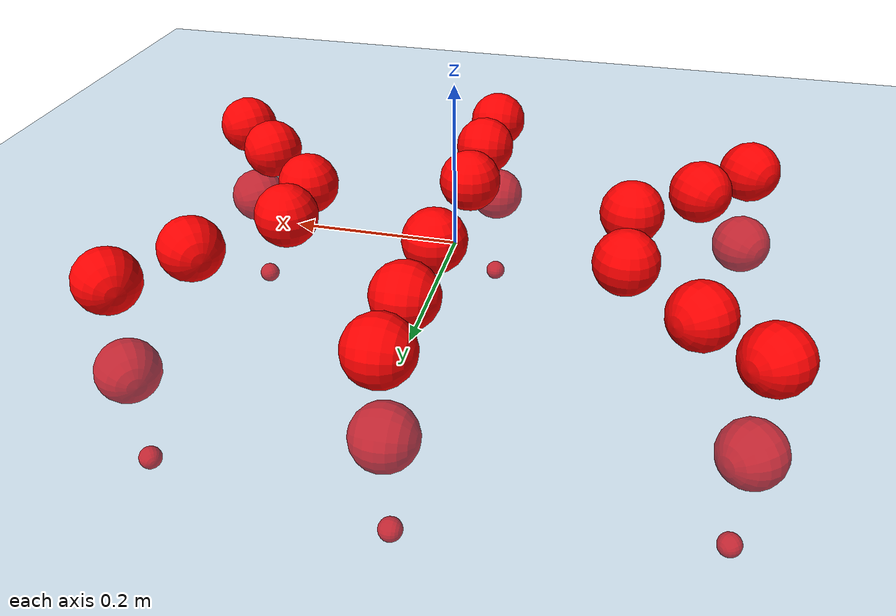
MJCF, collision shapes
<mujoco model="Golem">
  <compiler angle="radian" assetdir="assets" balanceinertia="true" inertiafromgeom="false"/>

  <option timestep="0.005" density="1.2" viscosity="2e-05"/>

  <size nkey="1"/>

  <visual>
    <quality shadowsize="8192"/>
    <map shadowclip="0.5"/>
  </visual>

  <default>
    <default class="/">
      <joint armature="0.01" damping="0.01" frictionloss="0.01"/>
      <geom contype="0" conaffinity="0" group="1" solref="-1000 -80"/>
      <site size="0.01 0.005 0.005" group="5"/>
      <general forcelimited="true" biastype="affine" gainprm="25" biasprm="0 -25 -0.5"/>
      <default class="visual">
        <geom type="mesh" group="2"/>
      </default>
      <default class="collision">
        <geom group="3"/>
      </default>
      <default class="foot">
        <geom size="0.01 0 0" condim="6" group="4" priority="1" solimp="0.015 1 0.01"/>
      </default>
      <default class="reward_collision_sphere">
        <geom group="5" rgba="1 0 0 1"/>
      </default>
    </default>
  </default>

  <asset>
    <texture type="skybox" colorspace="auto" name="//unnamed_texture_0" builtin="gradient" rgb1="0.95 0.95 0.95" rgb2="0.95 0.95 0.95" width="100" height="600"/>
    <texture type="2d" colorspace="auto" name="texplane" builtin="checker" rgb1="0.345 0.575 0.748" rgb2="0.345 0.575 0.748" markrgb="1 1 1" width="512" height="512"/>
    <material name="MatPlane" class="/" texture="texplane" texuniform="true" texrepeat="2 2" specular="0.9"/>
    <mesh name="body" class="/" file="body.stl" scale="0.001 0.001 0.001"/>
    <mesh name="coxa" class="/" file="coxa.stl" scale="0.001 0.001 0.001"/>
    <mesh name="femur" class="/" file="femur.stl" scale="0.001 0.001 0.001"/>
    <mesh name="tibia" class="/" file="tibia.stl" scale="0.001 0.001 0.001"/>
    <mesh name="tarsus" class="/" file="tarsus.stl" scale="0.001 0.001 0.001"/>
  </asset>

  <worldbody>
    <geom name="floor" class="/" size="100 100 0.125" type="plane" group="0" material="MatPlane"/>
    <light name="toplight_shadow" class="/" pos="0 0 5" dir="0.0990148 0.0990148 -0.990148" type="directional" ambient="0.04 0.04 0.04" diffuse="0.55 0.55 0.55" specular="0.12 0.12 0.12"/>
    <light name="toplight_fill" class="/" pos="0 0 5" dir="0.0990148 0.0990148 -0.990148" type="directional" castshadow="false" ambient="0.04 0.04 0.04" diffuse="0.3 0.3 0.3" specular="0.08 0.08 0.08"/>
    <body name="trunk" pos="-0.001902 0.00176106 -0.00110287" quat="1 -0.000403568 -0.000333913 -0.000144753">
      <inertial pos="-0.00450759 0.000994006 -0.00669026" quat="0.999954 0.00221486 0.00820141 0.00455454" mass="2.73249" diaginertia="0.0272462 0.00435395 0.00145405"/>
      <joint name="//unnamed_joint_0" type="free"/>
      <geom name="//unnamed_geom_1" class="/" pos="0 0 0.0449413" quat="1 0 0 0" type="mesh" rgba="0.9 0.9 0.9 1" mesh="body"/>
      <site name="imu" class="/" pos="0.17631 0.00977844 0.105936" size="0.00946022"/>
      <camera name="track" class="/" pos="0 -1.7243 0" quat="0.707107 0.707107 0 0" mode="trackcom"/>
      <camera name="ego_camera" class="/" pos="0.165582 0 0.0702208" quat="-0.5 -0.5 0.5 0.5"/>
      <body name="coxa_RR" pos="-0.229436 -0.0717666 0.0461977" quat="0.382689 -1.60069e-05 -3.5885e-05 -0.923877">
        <inertial pos="0.000284997 0.00215158 0.000534726" quat="0.999996 -0.00109794 -0.00197761 0.00191121" mass="0.169388" diaginertia="0.0341927 0.00499539 0.00173982"/>
        <joint name="coxa_joint_RR" class="/" pos="0 0 0" axis="-0.0238681 0.038454 -0.998975" range="-3.07492 3.15199" armature="0.00995767" damping="0.0148977" frictionloss="0.00919722"/>
        <geom name="//unnamed_geom_2" class="/" type="mesh" rgba="0.2 0.2 0.2 1" mesh="coxa"/>
        <geom name="//unnamed_geom_3" class="reward_collision_sphere" size="0.0378409" pos="-0.0382112 0 0"/>
        <body name="femur_RR" pos="0.0694553 -0.00257535 -0.00193605" quat="0.500649 -0.500577 0.498961 0.499811">
          <inertial pos="0.00115574 0.000632701 0.00240584" quat="0.99997 0.00317571 -0.00679909 -0.00211226" mass="0.178214" diaginertia="0.0327272 0.00520325 0.00179302"/>
          <joint name="femur_joint_RR" class="/" pos="0 0 0" axis="0.00994515 -0.0301268 -0.999497" range="-3.13713 3.1437" armature="0.00949395" damping="0.0087474" frictionloss="0.00900438"/>
          <geom name="//unnamed_geom_4" class="/" type="mesh" rgba="0.9 0.9 0.9 1" mesh="femur"/>
          <geom name="//unnamed_geom_5" class="reward_collision_sphere" size="0.0378409"/>
          <body name="tibia_RR" pos="0.00202681 -0.0951327 0.00883807" quat="-0.000389025 1 -0.000159541 0.000211418">
            <inertial pos="-0.00224739 0.00774718 0.00200138" quat="0.999226 -0.0108367 -0.0143283 -0.0349914" mass="0.169489" diaginertia="0.0304307 0.00462137 0.00169952"/>
            <joint name="tibia_joint_RR" class="/" pos="0 0 0" axis="0.012485 -0.011844 0.999852" range="-3.20693 3.11806" armature="0.00869074" damping="0" frictionloss="0.00958355"/>
            <geom name="//unnamed_geom_6" class="/" type="mesh" rgba="0.2 0.2 0.2 1" mesh="tibia"/>
            <geom name="//unnamed_geom_7" class="reward_collision_sphere" size="0.0378409"/>
            <body name="tarsus_RR" pos="0.109362 0.0080162 0.0020594" quat="0.999999 8.79349e-05 0.00110651 0.000120193">
              <inertial pos="0.0795466 -6.79845e-05 0.00358216" quat="0.5092 0.481519 0.521505 0.48671" mass="0.159408" diaginertia="0.032476 0.0046241 0.001845"/>
              <joint name="tarsus_joint_RR" class="/" pos="0 0 0" axis="0.0072917 -0.0098237 0.999925" range="-3.07258 3.10354" armature="0.009189" damping="0.0156691" frictionloss="0.00718085"/>
              <geom name="//unnamed_geom_8" class="/" type="mesh" rgba="0.9 0.9 0.9 1" mesh="tarsus"/>
              <geom name="foot_1" class="foot" size="0.00883422" pos="0.142655 0 0" quat="0 -0.707107 0 0.707107"/>
              <geom name="//unnamed_geom_10" class="reward_collision_sphere" size="0.0378409"/>
              <geom name="//unnamed_geom_11" class="reward_collision_sphere" size="0.0141903" pos="0.136924 0 0"/>
              <site name="foot_1" class="foot" pos="0.142655 0 0" quat="0 -0.707107 0 0.707107" size="0.00946022"/>
            </body>
          </body>
        </body>
      </body>
      <body name="coxa_RM" pos="-0.000171742 -0.112806 0.0491167" quat="0.705405 0.00210735 0.00330084 -0.708793">
        <inertial pos="-0.00374884 0.00144765 0.00583132" quat="0.999998 -0.00181921 -0.000445029 -5.91707e-05" mass="0.169057" diaginertia="0.0347162 0.00448894 0.0016771"/>
        <joint name="coxa_joint_RM" class="/" pos="0 0 0" axis="-0.00141109 -0.00492812 -0.999987" range="-3.09578 3.12946" armature="0.00730006" damping="0.0278062" frictionloss="0.0093964"/>
        <geom name="//unnamed_geom_12" class="/" type="mesh" rgba="0.2 0.2 0.2 1" mesh="coxa"/>
        <geom name="//unnamed_geom_13" class="reward_collision_sphere" size="0.0378409" pos="-0.0382112 0 0"/>
        <body name="femur_RM" pos="0.0799074 0.00595182 -0.00659553" quat="0.499298 -0.500616 0.500658 0.499426">
          <inertial pos="-0.00765998 0.0025715 0.000841114" quat="1 -0.000588882 -1.58304e-05 0.00033764" mass="0.183671" diaginertia="0.0393358 0.0051519 0.00202794"/>
          <joint name="femur_joint_RM" class="/" pos="0 0 0" axis="-0.00872811 -0.0186502 -0.999788" range="-3.13848 3.27728" armature="0.00997772" damping="0" frictionloss="0.0103977"/>
          <geom name="//unnamed_geom_14" class="/" type="mesh" rgba="0.9 0.9 0.9 1" mesh="femur"/>
          <geom name="//unnamed_geom_15" class="reward_collision_sphere" size="0.0378409"/>
          <body name="tibia_RM" pos="0.00269223 -0.0972468 0.00149702" quat="-0.00037611 0.999999 -0.00112681 -0.000740542">
            <inertial pos="0.00280179 -0.0089451 0.00226815" quat="0.999917 0.00928978 -0.00143597 -0.00878567" mass="0.177745" diaginertia="0.0346561 0.00492957 0.0017135"/>
            <joint name="tibia_joint_RM" class="/" pos="0 0 0" axis="-0.00108938 -0.0056401 0.999984" range="-3.1037 3.07935" armature="0.00919817" damping="0" frictionloss="0.00916215"/>
            <geom name="//unnamed_geom_16" class="/" type="mesh" rgba="0.2 0.2 0.2 1" mesh="tibia"/>
            <geom name="//unnamed_geom_17" class="reward_collision_sphere" size="0.0378409"/>
            <body name="tarsus_RM" pos="0.120694 0.00130704 9.13075e-05" quat="1 0.000410849 -0.000663015 -0.000246729">
              <inertial pos="0.0704559 -0.00178219 0.000801894" quat="0.497424 0.495306 0.499858 0.507331" mass="0.150175" diaginertia="0.0330464 0.00460116 0.00149799"/>
              <joint name="tarsus_joint_RM" class="/" pos="0 0 0" axis="-0.00389878 0.00201196 0.99999" range="-3.04824 3.24546" armature="0.00933888" damping="0.0104107" frictionloss="0.0116292"/>
              <geom name="//unnamed_geom_18" class="/" type="mesh" rgba="0.9 0.9 0.9 1" mesh="tarsus"/>
              <geom name="foot_2" class="foot" size="0.00837998" pos="0.142655 0 0" quat="0 -0.707107 0 0.707107"/>
              <geom name="//unnamed_geom_20" class="reward_collision_sphere" size="0.0378409"/>
              <geom name="//unnamed_geom_21" class="reward_collision_sphere" size="0.0141903" pos="0.136924 0 0"/>
              <site name="foot_2" class="foot" pos="0.142655 0 0" quat="0 -0.707107 0 0.707107" size="0.00946022"/>
            </body>
          </body>
        </body>
      </body>
      <body name="coxa_RF" pos="0.227577 -0.0662488 0.0391436" quat="0.92388 -5.59613e-06 4.4079e-06 -0.382681">
        <inertial pos="-0.00130651 0.00717242 -0.00448812" quat="0.999407 0.0252835 0.0143401 -0.0184702" mass="0.188724" diaginertia="0.035271 0.00500648 0.00179467"/>
        <joint name="coxa_joint_RF" class="/" pos="0 0 0" axis="-0.0237838 0.0147722 -0.999608" stiffness="0.011294" range="-3.28886 3.10328" armature="0.0121521" damping="0.0173207" frictionloss="0.00873113"/>
        <geom name="//unnamed_geom_22" class="/" type="mesh" rgba="0.2 0.2 0.2 1" mesh="coxa"/>
        <geom name="//unnamed_geom_23" class="reward_collision_sphere" size="0.0378409" pos="-0.0382112 0 0"/>
        <body name="femur_RF" pos="0.0739204 0.00161931 0.00308945" quat="0.500023 -0.499798 0.500174 0.500005">
          <inertial pos="0.00412933 -0.00701904 0.00214032" quat="0.999994 0.000904894 0.000417721 0.00328862" mass="0.165242" diaginertia="0.0306334 0.00433588 0.00152783"/>
          <joint name="femur_joint_RF" class="/" pos="0 0 0" axis="0.00747075 0.00376075 -0.999965" range="-3.18083 3.16697" armature="0.00915753" damping="0.00477744" frictionloss="0.0101187"/>
          <geom name="//unnamed_geom_24" class="/" type="mesh" rgba="0.9 0.9 0.9 1" mesh="femur"/>
          <geom name="//unnamed_geom_25" class="reward_collision_sphere" size="0.0378409"/>
          <body name="tibia_RF" pos="-0.000589573 -0.0908986 -0.00112429" quat="-6.54528e-06 1 -0.000214006 -0.000109071">
            <inertial pos="-3.89341e-05 0.000235055 0.00840656" quat="0.99956 0.0246985 -0.0158831 -0.00416832" mass="0.172642" diaginertia="0.0328259 0.00512482 0.00159132"/>
            <joint name="tibia_joint_RF" class="/" pos="0 0 0" axis="-0.000139727 0.00316997 0.999995" range="-3.17176 3.09866" armature="0.0101031" damping="0.0202201" frictionloss="0.00841729"/>
            <geom name="//unnamed_geom_26" class="/" type="mesh" rgba="0.2 0.2 0.2 1" mesh="tibia"/>
            <geom name="//unnamed_geom_27" class="reward_collision_sphere" size="0.0378409"/>
            <body name="tarsus_RF" pos="0.111683 -0.000954666 -0.000151193" quat="0.999998 0.00175324 -0.00130347 0.000421227">
              <inertial pos="0.0775423 0.0014493 0.000338015" quat="0.499735 0.506414 0.498689 0.495095" mass="0.163149" diaginertia="0.0321794 0.00498198 0.00181805"/>
              <joint name="tarsus_joint_RF" class="/" pos="0 0 0" axis="-0.0119536 -0.00250491 0.999925" stiffness="0.0267077" range="-3.23608 3.1406" armature="0.0105091" damping="0.0357445" frictionloss="0.0102809"/>
              <geom name="//unnamed_geom_28" class="/" type="mesh" rgba="0.9 0.9 0.9 1" mesh="tarsus"/>
              <geom name="foot_3" class="foot" size="0.00928248" pos="0.142655 0 0" quat="0 -0.707107 0 0.707107"/>
              <geom name="//unnamed_geom_30" class="reward_collision_sphere" size="0.0378409"/>
              <geom name="//unnamed_geom_31" class="reward_collision_sphere" size="0.0141903" pos="0.136924 0 0"/>
              <site name="foot_3" class="foot" pos="0.142655 0 0" quat="0 -0.707107 0 0.707107" size="0.00946022"/>
            </body>
          </body>
        </body>
      </body>
      <body name="coxa_LR" pos="-0.231332 0.077214 0.0355151" quat="0.382698 2.67508e-05 -0.000155202 0.923874">
        <inertial pos="0.00409189 0.00469504 -0.000283543" quat="0.999751 0.0148745 0.015767 0.00522816" mass="0.182016" diaginertia="0.0313724 0.00526154 0.00198709"/>
        <joint name="coxa_joint_LR" class="/" pos="0 0 0" axis="-0.000126631 -0.000241905 -1" range="-3.09357 3.1164" armature="0.00918854" damping="0" frictionloss="0.0104141"/>
        <geom name="//unnamed_geom_32" class="/" type="mesh" rgba="0.2 0.2 0.2 1" mesh="coxa"/>
        <geom name="//unnamed_geom_33" class="reward_collision_sphere" size="0.0378409" pos="-0.0382112 0 0"/>
        <body name="femur_LR" pos="0.0760197 0.00337189 -0.00409665" quat="0.499863 -0.500098 0.499616 0.500423">
          <inertial pos="0.00180902 0.00913142 0.00134432" quat="1 -0.00043789 0.00037016 0.00019236" mass="0.168005" diaginertia="0.0370482 0.00458628 0.00189977"/>
          <joint name="femur_joint_LR" class="/" pos="0 0 0" axis="-0.00499301 0.00432658 0.999978" range="-3.26873 3.14149" armature="0.00854978" damping="0.0542307" frictionloss="0.00947673"/>
          <geom name="//unnamed_geom_34" class="/" type="mesh" rgba="0.9 0.9 0.9 1" mesh="femur"/>
          <geom name="//unnamed_geom_35" class="reward_collision_sphere" size="0.0378409"/>
          <body name="tibia_LR" pos="-0.00150372 -0.0907705 0.00849005" quat="-0.000536785 0.999999 -0.000899957 9.32789e-05">
            <inertial pos="-0.00236686 0.00462816 0.00262247" quat="0.999558 -0.0053345 -0.0284384 -0.00684693" mass="0.17665" diaginertia="0.0362632 0.00499991 0.00174338"/>
            <joint name="tibia_joint_LR" class="/" pos="0 0 0" axis="-0.00176142 -0.000940801 -0.999998" stiffness="0.0172425" range="-3.1808 3.00546" armature="0.00956432" damping="0.0143103" frictionloss="0.0094031"/>
            <geom name="//unnamed_geom_36" class="/" type="mesh" rgba="0.2 0.2 0.2 1" mesh="tibia"/>
            <geom name="//unnamed_geom_37" class="reward_collision_sphere" size="0.0378409"/>
            <body name="tarsus_LR" pos="0.115142 0.00398985 0.00862692" quat="0.999998 0.00180374 -0.00091343 -0.000134719">
              <inertial pos="0.0734069 0.00773367 0.00650059" quat="0.502308 0.499931 0.49846 0.499292" mass="0.174213" diaginertia="0.0334936 0.00490616 0.00185627"/>
              <joint name="tarsus_joint_LR" class="/" pos="0 0 0" axis="0.0192616 -0.0259705 -0.999477" stiffness="0.0330329" range="-3.1237 3.18975" armature="0.0112662" damping="0.0341163" frictionloss="0.0106713"/>
              <geom name="//unnamed_geom_38" class="/" type="mesh" rgba="0.9 0.9 0.9 1" mesh="tarsus"/>
              <geom name="foot_4" class="foot" size="0.00631952" pos="0.142655 0 0" quat="0.707107 0 -0.707107 0"/>
              <geom name="//unnamed_geom_40" class="reward_collision_sphere" size="0.0378409"/>
              <geom name="//unnamed_geom_41" class="reward_collision_sphere" size="0.0141903" pos="0.136924 0 0"/>
              <site name="foot_4" class="foot" pos="0.142655 0 0" quat="0.707107 0 -0.707107 0" size="0.00946022"/>
            </body>
          </body>
        </body>
      </body>
      <body name="coxa_LM" pos="0.00837079 0.106953 0.0452727" quat="0.70681 6.43731e-05 -0.000313855 0.707403">
        <inertial pos="0.000320304 0.00395085 7.33227e-06" quat="0.999542 0.0282512 -0.0108137 -0.000316187" mass="0.161588" diaginertia="0.0302451 0.00430788 0.00152481"/>
        <joint name="coxa_joint_LM" class="/" pos="0 0 0" axis="0.0408736 0.0138034 -0.999069" stiffness="0.00224537" range="-3.10359 3.16389" armature="0.00963461" damping="0.00942612" frictionloss="0.0081727"/>
        <geom name="//unnamed_geom_42" class="/" type="mesh" rgba="0.2 0.2 0.2 1" mesh="coxa"/>
        <geom name="//unnamed_geom_43" class="reward_collision_sphere" size="0.0378409" pos="-0.0382112 0 0"/>
        <body name="femur_LM" pos="0.0808666 -0.000335435 0.00421095" quat="0.500044 -0.499984 0.500025 0.499948">
          <inertial pos="-0.00391514 -0.00223953 -0.00108246" quat="0.999755 -0.0108653 0.0022734 0.0191365" mass="0.158103" diaginertia="0.03425 0.00405738 0.00160022"/>
          <joint name="femur_joint_LM" class="/" pos="0 0 0" axis="-0.00276971 0.0034129 0.99999" stiffness="0.00356626" range="-3.12382 3.18213" armature="0.00825696" damping="0" frictionloss="0.0111785"/>
          <geom name="//unnamed_geom_44" class="/" type="mesh" rgba="0.9 0.9 0.9 1" mesh="femur"/>
          <geom name="//unnamed_geom_45" class="reward_collision_sphere" size="0.0378409"/>
          <body name="tibia_LM" pos="0.00110407 -0.0909424 0.000629371" quat="-0.0011693 0.999996 -0.00217231 0.00106188">
            <inertial pos="-0.00299267 0.00195713 0.00586853" quat="0.999475 0.0297917 0.00513808 -0.0116126" mass="0.161025" diaginertia="0.0319409 0.00416943 0.00164751"/>
            <joint name="tibia_joint_LM" class="/" pos="0 0 0" axis="0.00834065 -0.00519931 -0.999952" stiffness="0.0350923" range="-3.1443 3.1382" armature="0.00936135" damping="0.000452579" frictionloss="0.0118488"/>
            <geom name="//unnamed_geom_46" class="/" type="mesh" rgba="0.2 0.2 0.2 1" mesh="tibia"/>
            <geom name="//unnamed_geom_47" class="reward_collision_sphere" size="0.0378409"/>
            <body name="tarsus_LM" pos="0.11434 -0.00545007 0.00194192" quat="0.999996 0.000354629 0.000198377 -0.00296571">
              <inertial pos="0.0755019 0.00170734 -0.00191016" quat="0.483556 0.522019 0.509165 0.48417" mass="0.152254" diaginertia="0.0290698 0.00465302 0.00165906"/>
              <joint name="tarsus_joint_LM" class="/" pos="0 0 0" axis="0.0117982 -0.0401324 -0.999125" range="-3.0961 3.09783" armature="0.00845345" damping="0.0343104" frictionloss="0.00643266"/>
              <geom name="//unnamed_geom_48" class="/" type="mesh" rgba="0.9 0.9 0.9 1" mesh="tarsus"/>
              <geom name="foot_5" class="foot" size="0.00909431" pos="0.142655 0 0" quat="0.707107 0 -0.707107 0"/>
              <geom name="//unnamed_geom_50" class="reward_collision_sphere" size="0.0378409"/>
              <geom name="//unnamed_geom_51" class="reward_collision_sphere" size="0.0141903" pos="0.136924 0 0"/>
              <site name="foot_5" class="foot" pos="0.142655 0 0" quat="0.707107 0 -0.707107 0" size="0.00946022"/>
            </body>
          </body>
        </body>
      </body>
      <body name="coxa_LF" pos="0.219862 0.0783727 0.0440446" quat="0.923605 7.81067e-05 -0.000250951 0.383346">
        <inertial pos="0.000900318 -5.78403e-06 -0.00585425" quat="0.999771 0.00724215 0.00224105 -0.0200311" mass="0.171392" diaginertia="0.0354233 0.00425743 0.00173484"/>
        <joint name="coxa_joint_LF" class="/" pos="0 0 0" axis="-0.00682793 -0.024564 -0.999675" range="-3.17636 3.1467" armature="0.0120426" damping="0.00429208" frictionloss="0.00521965"/>
        <geom name="//unnamed_geom_52" class="/" type="mesh" rgba="0.2 0.2 0.2 1" mesh="coxa"/>
        <geom name="//unnamed_geom_53" class="reward_collision_sphere" size="0.0378409" pos="-0.0382112 0 0"/>
        <body name="femur_LF" pos="0.0790924 0.00382471 -0.00603797" quat="0.4996 -0.500804 0.499952 0.499643">
          <inertial pos="0.00862083 -0.00118891 -0.00906904" quat="0.999943 0.00391038 0.000169612 0.00990567" mass="0.176183" diaginertia="0.0314302 0.00500571 0.0017527"/>
          <joint name="femur_joint_LF" class="/" pos="0 0 0" axis="-0.00371048 -0.00516573 0.99998" range="-3.10158 3.09902" armature="0.00806445" damping="0" frictionloss="0.0100263"/>
          <geom name="//unnamed_geom_54" class="/" type="mesh" rgba="0.9 0.9 0.9 1" mesh="femur"/>
          <geom name="//unnamed_geom_55" class="reward_collision_sphere" size="0.0378409"/>
          <body name="tibia_LF" pos="0.00791208 -0.0951995 0.00351461" quat="0.00128531 0.999999 -0.000124158 -0.000296099">
            <inertial pos="0.00101834 0.00845893 -0.00388462" quat="1 -0.000212346 -0.000675136 0.00043732" mass="0.187912" diaginertia="0.0411314 0.00532226 0.00190964"/>
            <joint name="tibia_joint_LF" class="/" pos="0 0 0" axis="-0.0126972 -0.00472055 -0.999908" range="-3.16268 3.17998" armature="0.00754954" damping="0.0213116" frictionloss="0.0101543"/>
            <geom name="//unnamed_geom_56" class="/" type="mesh" rgba="0.2 0.2 0.2 1" mesh="tibia"/>
            <geom name="//unnamed_geom_57" class="reward_collision_sphere" size="0.0378409"/>
            <body name="tarsus_LF" pos="0.117955 0.00278271 -0.00782215" quat="1 0.000594281 -0.000290309 0.000616539">
              <inertial pos="0.0785453 -0.00203245 -0.00210875" quat="0.491949 0.511952 0.501108 0.494754" mass="0.198214" diaginertia="0.0369711 0.00560501 0.00187047"/>
              <joint name="tarsus_joint_LF" class="/" pos="0 0 0" axis="-0.00251932 0.00126438 -0.999996" range="-3.11201 3.14665" armature="0.00696413" damping="0.0364467" frictionloss="0.0133279"/>
              <geom name="//unnamed_geom_58" class="/" type="mesh" rgba="0.9 0.9 0.9 1" mesh="tarsus"/>
              <geom name="foot_6" class="foot" size="0.00943625" pos="0.142655 0 0" quat="0.707107 0 -0.707107 0"/>
              <geom name="//unnamed_geom_60" class="reward_collision_sphere" size="0.0378409"/>
              <geom name="//unnamed_geom_61" class="reward_collision_sphere" size="0.0141903" pos="0.136924 0 0"/>
              <site name="foot_6" class="foot" pos="0.142655 0 0" quat="0.707107 0 -0.707107 0" size="0.00946022"/>
            </body>
          </body>
        </body>
      </body>
    </body>
  </worldbody>

  <contact>
    <pair class="/" geom1="floor" geom2="foot_1" name="//unnamed_contact_0"/>
    <pair class="/" geom1="floor" geom2="foot_2" name="//unnamed_contact_1"/>
    <pair class="/" geom1="floor" geom2="foot_3" name="//unnamed_contact_2"/>
    <pair class="/" geom1="floor" geom2="foot_4" name="//unnamed_contact_3"/>
    <pair class="/" geom1="floor" geom2="foot_5" name="//unnamed_contact_4"/>
    <pair class="/" geom1="floor" geom2="foot_6" name="//unnamed_contact_5"/>
  </contact>

  <actuator>
    <general name="coxa_joint_RR" class="/" joint="coxa_joint_RR" forcerange="-6.90978 6.90978" gainprm="19.9711" biasprm="0 -19.9711 -0.465787"/>
    <general name="femur_joint_RR" class="/" joint="femur_joint_RR" forcerange="-6.3491 6.3491" gainprm="19.9711" biasprm="0 -19.9711 -0.465787"/>
    <general name="tibia_joint_RR" class="/" joint="tibia_joint_RR" forcerange="-6.7274 6.7274" gainprm="19.9711" biasprm="0 -19.9711 -0.465787"/>
    <general name="tarsus_joint_RR" class="/" joint="tarsus_joint_RR" forcerange="-5.32049 5.32049" gainprm="19.9711" biasprm="0 -19.9711 -0.465787"/>
    <general name="coxa_joint_RM" class="/" joint="coxa_joint_RM" forcerange="-7.46164 7.46164" gainprm="19.9711" biasprm="0 -19.9711 -0.465787"/>
    <general name="femur_joint_RM" class="/" joint="femur_joint_RM" forcerange="-6.82286 6.82286" gainprm="19.9711" biasprm="0 -19.9711 -0.465787"/>
    <general name="tibia_joint_RM" class="/" joint="tibia_joint_RM" forcerange="-7.00971 7.00971" gainprm="19.9711" biasprm="0 -19.9711 -0.465787"/>
    <general name="tarsus_joint_RM" class="/" joint="tarsus_joint_RM" forcerange="-4.89861 4.89861" gainprm="19.9711" biasprm="0 -19.9711 -0.465787"/>
    <general name="coxa_joint_RF" class="/" joint="coxa_joint_RF" forcerange="-6.397 6.397" gainprm="19.9711" biasprm="0 -19.9711 -0.465787"/>
    <general name="femur_joint_RF" class="/" joint="femur_joint_RF" forcerange="-8.76923 8.76923" gainprm="19.9711" biasprm="0 -19.9711 -0.465787"/>
    <general name="tibia_joint_RF" class="/" joint="tibia_joint_RF" forcerange="-6.10019 6.10019" gainprm="19.9711" biasprm="0 -19.9711 -0.465787"/>
    <general name="tarsus_joint_RF" class="/" joint="tarsus_joint_RF" forcerange="-7.8524 7.8524" gainprm="19.9711" biasprm="0 -19.9711 -0.465787"/>
    <general name="coxa_joint_LR" class="/" joint="coxa_joint_LR" forcerange="-7.56684 7.56684" gainprm="19.9711" biasprm="0 -19.9711 -0.465787"/>
    <general name="femur_joint_LR" class="/" joint="femur_joint_LR" forcerange="-7.36364 7.36364" gainprm="19.9711" biasprm="0 -19.9711 -0.465787"/>
    <general name="tibia_joint_LR" class="/" joint="tibia_joint_LR" forcerange="-6.79254 6.79254" gainprm="19.9711" biasprm="0 -19.9711 -0.465787"/>
    <general name="tarsus_joint_LR" class="/" joint="tarsus_joint_LR" forcerange="-7.58443 7.58443" gainprm="19.9711" biasprm="0 -19.9711 -0.465787"/>
    <general name="coxa_joint_LM" class="/" joint="coxa_joint_LM" forcerange="-6.44495 6.44495" gainprm="19.9711" biasprm="0 -19.9711 -0.465787"/>
    <general name="femur_joint_LM" class="/" joint="femur_joint_LM" forcerange="-7.70709 7.70709" gainprm="19.9711" biasprm="0 -19.9711 -0.465787"/>
    <general name="tibia_joint_LM" class="/" joint="tibia_joint_LM" forcerange="-6.98398 6.98398" gainprm="19.9711" biasprm="0 -19.9711 -0.465787"/>
    <general name="tarsus_joint_LM" class="/" joint="tarsus_joint_LM" forcerange="-6.49774 6.49774" gainprm="19.9711" biasprm="0 -19.9711 -0.465787"/>
    <general name="coxa_joint_LF" class="/" joint="coxa_joint_LF" forcerange="-8.44972 8.44972" gainprm="19.9711" biasprm="0 -19.9711 -0.465787"/>
    <general name="femur_joint_LF" class="/" joint="femur_joint_LF" forcerange="-7.57255 7.57255" gainprm="19.9711" biasprm="0 -19.9711 -0.465787"/>
    <general name="tibia_joint_LF" class="/" joint="tibia_joint_LF" forcerange="-6.25672 6.25672" gainprm="19.9711" biasprm="0 -19.9711 -0.465787"/>
    <general name="tarsus_joint_LF" class="/" joint="tarsus_joint_LF" forcerange="-6.90442 6.90442" gainprm="19.9711" biasprm="0 -19.9711 -0.465787"/>
  </actuator>

  <sensor>
    <gyro site="imu" name="imu_angular_velocity"/>
    <velocimeter site="imu" name="imu_linear_velocity"/>
    <framelinvel objtype="site" objname="foot_1" name="foot_1_global_linear_velocity"/>
    <framelinvel objtype="site" objname="foot_2" name="foot_2_global_linear_velocity"/>
    <framelinvel objtype="site" objname="foot_3" name="foot_3_global_linear_velocity"/>
    <framelinvel objtype="site" objname="foot_4" name="foot_4_global_linear_velocity"/>
    <framelinvel objtype="site" objname="foot_5" name="foot_5_global_linear_velocity"/>
    <framelinvel objtype="site" objname="foot_6" name="foot_6_global_linear_velocity"/>
  </sensor>

  <keyframe>
    <key name="home" qpos="0 0 0.1457 1 0 0 0 0 0 0 0 0 0 0 0 0 0 0 0 0 0 0 0 0 0 0 0 0 0 0 0"/>
  </keyframe>
</mujoco>
